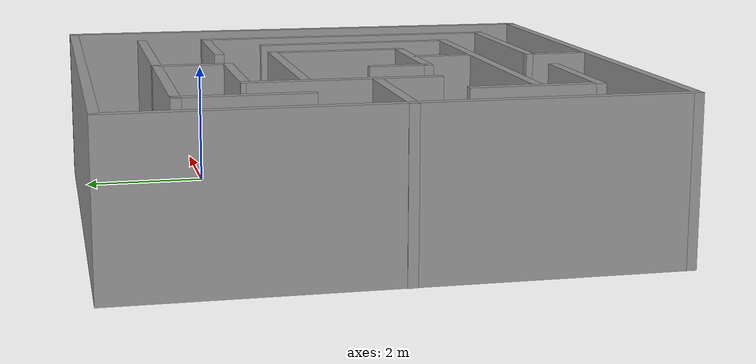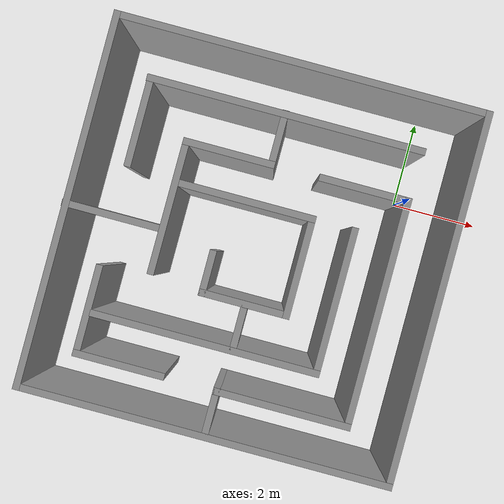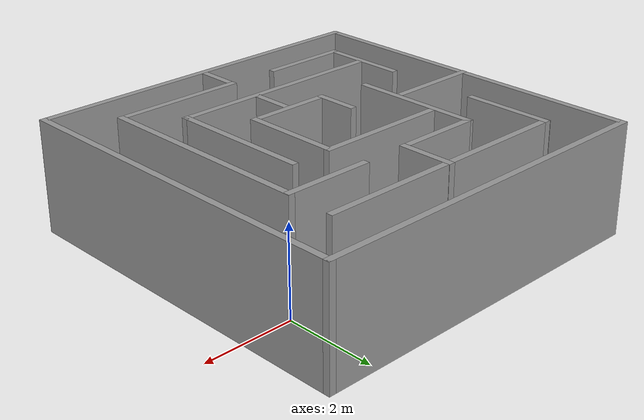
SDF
<?xml version='1.0'?>
<sdf version='1.7'>
  <model name='maze_8x8'>
    <pose>-2.97963 -1.94227 0 0 -0 0</pose>
    <link name='Wall_1'>
      <collision name='Wall_1_Collision'>
        <geometry>
          <box>
            <size>8.25 0.15 2.5</size>
          </box>
        </geometry>
        <pose>0 0 1.25 0 -0 0</pose>
      </collision>
      <visual name='Wall_1_Visual'>
        <pose>0 0 1.25 0 -0 0</pose>
        <geometry>
          <box>
            <size>8.25 0.15 2.5</size>
          </box>
        </geometry>
        <material>
          <script>
            <uri>file://media/materials/scripts/gazebo.material</uri>
            <name>Gazebo/Grey</name>
          </script>
          <ambient>1 1 1 1</ambient>
        </material>
        <meta>
          <layer>0</layer>
        </meta>
      </visual>
      <pose>-4.04416 -0 0 0 -0 1.5708</pose>
    </link>
    <link name='Wall_100'>
      <collision name='Wall_100_Collision'>
        <geometry>
          <box>
            <size>5 0.15 2.5</size>
          </box>
        </geometry>
        <pose>0 0 1.25 0 -0 0</pose>
      </collision>
      <visual name='Wall_100_Visual'>
        <pose>0 0 1.25 0 -0 0</pose>
        <geometry>
          <box>
            <size>5 0.15 2.5</size>
          </box>
        </geometry>
        <material>
          <script>
            <uri>file://media/materials/scripts/gazebo.material</uri>
            <name>Gazebo/Grey</name>
          </script>
          <ambient>1 1 1 1</ambient>
        </material>
        <meta>
          <layer>0</layer>
        </meta>
      </visual>
      <pose>-0.460696 -2.15237 0 0 -0 3.14159</pose>
    </link>
    <link name='Wall_102'>
      <collision name='Wall_102_Collision'>
        <geometry>
          <box>
            <size>1 0.15 2.5</size>
          </box>
        </geometry>
        <pose>0 0 1.25 0 -0 0</pose>
      </collision>
      <visual name='Wall_102_Visual'>
        <pose>0 0 1.25 0 -0 0</pose>
        <geometry>
          <box>
            <size>1 0.15 2.5</size>
          </box>
        </geometry>
        <material>
          <script>
            <uri>file://media/materials/scripts/gazebo.material</uri>
            <name>Gazebo/Grey</name>
          </script>
          <ambient>1 1 1 1</ambient>
        </material>
        <meta>
          <layer>0</layer>
        </meta>
      </visual>
      <pose>0.139254 -1.65222 0 0 -0 -1.5708</pose>
    </link>
    <link name='Wall_21'>
      <collision name='Wall_21_Collision'>
        <geometry>
          <box>
            <size>8.25 0.15 2.5</size>
          </box>
        </geometry>
        <pose>0 0 1.25 0 -0 0</pose>
      </collision>
      <visual name='Wall_21_Visual'>
        <pose>0 0 1.25 0 -0 0</pose>
        <geometry>
          <box>
            <size>8.25 0.15 2.5</size>
          </box>
        </geometry>
        <material>
          <script>
            <uri>file://media/materials/scripts/gazebo.material</uri>
            <name>Gazebo/Grey</name>
          </script>
          <ambient>1 1 1 1</ambient>
        </material>
        <meta>
          <layer>0</layer>
        </meta>
      </visual>
      <pose>0.005836 -4.05 0 0 -0 0</pose>
    </link>
    <link name='Wall_22'>
      <collision name='Wall_22_Collision'>
        <geometry>
          <box>
            <size>8.25 0.15 2.5</size>
          </box>
        </geometry>
        <pose>0 0 1.25 0 -0 0</pose>
      </collision>
      <visual name='Wall_22_Visual'>
        <pose>0 0 1.25 0 -0 0</pose>
        <geometry>
          <box>
            <size>8.25 0.15 2.5</size>
          </box>
        </geometry>
        <material>
          <script>
            <uri>file://media/materials/scripts/gazebo.material</uri>
            <name>Gazebo/Grey</name>
          </script>
          <ambient>1 1 1 1</ambient>
        </material>
        <meta>
          <layer>0</layer>
        </meta>
      </visual>
      <pose>4.05584 -0 0 0 -0 1.5708</pose>
    </link>
    <link name='Wall_23'>
      <collision name='Wall_23_Collision'>
        <geometry>
          <box>
            <size>8.25 0.15 2.5</size>
          </box>
        </geometry>
        <pose>0 0 1.25 0 -0 0</pose>
      </collision>
      <visual name='Wall_23_Visual'>
        <pose>0 0 1.25 0 -0 0</pose>
        <geometry>
          <box>
            <size>8.25 0.15 2.5</size>
          </box>
        </geometry>
        <material>
          <script>
            <uri>file://media/materials/scripts/gazebo.material</uri>
            <name>Gazebo/Grey</name>
          </script>
          <ambient>1 1 1 1</ambient>
        </material>
        <meta>
          <layer>0</layer>
        </meta>
      </visual>
      <pose>0.005836 4.05 0 0 -0 3.14159</pose>
    </link>
    <link name='Wall_31'>
      <collision name='Wall_31_Collision'>
        <geometry>
          <box>
            <size>6.0644 0.15 2.5</size>
          </box>
        </geometry>
        <pose>0 0 1.25 0 -0 0</pose>
      </collision>
      <visual name='Wall_31_Visual'>
        <pose>0 0 1.25 0 -0 0</pose>
        <geometry>
          <box>
            <size>6.0644 0.15 2.5</size>
          </box>
        </geometry>
        <material>
          <script>
            <uri>file://media/materials/scripts/gazebo.material</uri>
            <name>Gazebo/Grey</name>
          </script>
          <ambient>1 1 1 1</ambient>
        </material>
        <meta>
          <layer>0</layer>
        </meta>
      </visual>
      <pose>-0.060515 2.93404 0 0 -0 0</pose>
    </link>
    <link name='Wall_35'>
      <collision name='Wall_35_Collision'>
        <geometry>
          <box>
            <size>2 0.15 2.5</size>
          </box>
        </geometry>
        <pose>0 0 1.25 0 -0 0</pose>
      </collision>
      <visual name='Wall_35_Visual'>
        <pose>0 0 1.25 0 -0 0</pose>
        <geometry>
          <box>
            <size>2 0.15 2.5</size>
          </box>
        </geometry>
        <material>
          <script>
            <uri>file://media/materials/scripts/gazebo.material</uri>
            <name>Gazebo/Grey</name>
          </script>
          <ambient>1 1 1 1</ambient>
        </material>
        <meta>
          <layer>0</layer>
        </meta>
      </visual>
      <pose>-3.00449 2.00904 0 0 -0 -1.5708</pose>
    </link>
    <link name='Wall_39'>
      <collision name='Wall_39_Collision'>
        <geometry>
          <box>
            <size>2 0.15 2.5</size>
          </box>
        </geometry>
        <pose>0 0 1.25 0 -0 0</pose>
      </collision>
      <visual name='Wall_39_Visual'>
        <pose>0 0 1.25 0 -0 0</pose>
        <geometry>
          <box>
            <size>2 0.15 2.5</size>
          </box>
        </geometry>
        <material>
          <script>
            <uri>file://media/materials/scripts/gazebo.material</uri>
            <name>Gazebo/Grey</name>
          </script>
          <ambient>1 1 1 1</ambient>
        </material>
        <meta>
          <layer>0</layer>
        </meta>
      </visual>
      <pose>-1.01246 1.84213 0 0 -0 3.14159</pose>
    </link>
    <link name='Wall_40'>
      <collision name='Wall_40_Collision'>
        <geometry>
          <box>
            <size>2.97013 0.15 2.5</size>
          </box>
        </geometry>
        <pose>0 0 1.25 0 -0 0</pose>
      </collision>
      <visual name='Wall_40_Visual'>
        <pose>0 0 1.25 0 -0 0</pose>
        <geometry>
          <box>
            <size>2.97013 0.15 2.5</size>
          </box>
        </geometry>
        <material>
          <script>
            <uri>file://media/materials/scripts/gazebo.material</uri>
            <name>Gazebo/Grey</name>
          </script>
          <ambient>1 1 1 1</ambient>
        </material>
        <meta>
          <layer>0</layer>
        </meta>
      </visual>
      <pose>-1.94074 0.432067 0 0 -0 -1.57313</pose>
    </link>
    <link name='Wall_56'>
      <collision name='Wall_56_Collision'>
        <geometry>
          <box>
            <size>1.25 0.15 2.5</size>
          </box>
        </geometry>
        <pose>0 0 1.25 0 -0 0</pose>
      </collision>
      <visual name='Wall_56_Visual'>
        <pose>0 0 1.25 0 -0 0</pose>
        <geometry>
          <box>
            <size>1.25 0.15 2.5</size>
          </box>
        </geometry>
        <material>
          <script>
            <uri>file://media/materials/scripts/gazebo.material</uri>
            <name>Gazebo/Grey</name>
          </script>
          <ambient>1 1 1 1</ambient>
        </material>
        <meta>
          <layer>0</layer>
        </meta>
      </visual>
      <pose>-0.087455 2.39213 0 0 -0 1.5708</pose>
    </link>
    <link name='Wall_66'>
      <collision name='Wall_66_Collision'>
        <geometry>
          <box>
            <size>1 0.15 2.5</size>
          </box>
        </geometry>
        <pose>0 0 1.25 0 -0 0</pose>
      </collision>
      <visual name='Wall_66_Visual'>
        <pose>0 0 1.25 0 -0 0</pose>
        <geometry>
          <box>
            <size>1 0.15 2.5</size>
          </box>
        </geometry>
        <material>
          <script>
            <uri>file://media/materials/scripts/gazebo.material</uri>
            <name>Gazebo/Grey</name>
          </script>
          <ambient>1 1 1 1</ambient>
        </material>
        <meta>
          <layer>0</layer>
        </meta>
      </visual>
      <pose>0.036619 -3.48719 0 0 -0 -1.5708</pose>
    </link>
    <link name='Wall_72'>
      <collision name='Wall_72_Collision'>
        <geometry>
          <box>
            <size>3 0.15 2.5</size>
          </box>
        </geometry>
        <pose>0 0 1.25 0 -0 0</pose>
      </collision>
      <visual name='Wall_72_Visual'>
        <pose>0 0 1.25 0 -0 0</pose>
        <geometry>
          <box>
            <size>3 0.15 2.5</size>
          </box>
        </geometry>
        <material>
          <script>
            <uri>file://media/materials/scripts/gazebo.material</uri>
            <name>Gazebo/Grey</name>
          </script>
          <ambient>1 1 1 1</ambient>
        </material>
        <meta>
          <layer>0</layer>
        </meta>
      </visual>
      <pose>1.46162 -3.06219 0 0 -0 0</pose>
    </link>
    <link name='Wall_75'>
      <collision name='Wall_75_Collision'>
        <geometry>
          <box>
            <size>5.05772 0.15 2.5</size>
          </box>
        </geometry>
        <pose>0 0 1.25 0 -0 0</pose>
      </collision>
      <visual name='Wall_75_Visual'>
        <pose>0 0 1.25 0 -0 0</pose>
        <geometry>
          <box>
            <size>5.05772 0.15 2.5</size>
          </box>
        </geometry>
        <material>
          <script>
            <uri>file://media/materials/scripts/gazebo.material</uri>
            <name>Gazebo/Grey</name>
          </script>
          <ambient>1 1 1 1</ambient>
        </material>
        <meta>
          <layer>0</layer>
        </meta>
      </visual>
      <pose>2.88662 -0.608436 0 0 -0 1.5708</pose>
    </link>
    <link name='Wall_76'>
      <collision name='Wall_76_Collision'>
        <geometry>
          <box>
            <size>2 0.15 2.5</size>
          </box>
        </geometry>
        <pose>0 0 1.25 0 -0 0</pose>
      </collision>
      <visual name='Wall_76_Visual'>
        <pose>0 0 1.25 0 -0 0</pose>
        <geometry>
          <box>
            <size>2 0.15 2.5</size>
          </box>
        </geometry>
        <material>
          <script>
            <uri>file://media/materials/scripts/gazebo.material</uri>
            <name>Gazebo/Grey</name>
          </script>
          <ambient>1 1 1 1</ambient>
        </material>
        <meta>
          <layer>0</layer>
        </meta>
      </visual>
      <pose>1.95012 1.84531 0 0 -0 3.14159</pose>
    </link>
    <link name='Wall_82'>
      <collision name='Wall_82_Collision'>
        <geometry>
          <box>
            <size>2 0.15 2.5</size>
          </box>
        </geometry>
        <pose>0 0 1.25 0 -0 0</pose>
      </collision>
      <visual name='Wall_82_Visual'>
        <pose>0 0 1.25 0 -0 0</pose>
        <geometry>
          <box>
            <size>2 0.15 2.5</size>
          </box>
        </geometry>
        <material>
          <script>
            <uri>file://media/materials/scripts/gazebo.material</uri>
            <name>Gazebo/Grey</name>
          </script>
          <ambient>1 1 1 1</ambient>
        </material>
        <meta>
          <layer>0</layer>
        </meta>
      </visual>
      <pose>-2.0937 -3.05227 0 0 -0 3.14159</pose>
    </link>
    <link name='Wall_86'>
      <collision name='Wall_86_Collision'>
        <geometry>
          <box>
            <size>2 0.15 2.5</size>
          </box>
        </geometry>
        <pose>0 0 1.25 0 -0 0</pose>
      </collision>
      <visual name='Wall_86_Visual'>
        <pose>0 0 1.25 0 -0 0</pose>
        <geometry>
          <box>
            <size>2 0.15 2.5</size>
          </box>
        </geometry>
        <material>
          <script>
            <uri>file://media/materials/scripts/gazebo.material</uri>
            <name>Gazebo/Grey</name>
          </script>
          <ambient>1 1 1 1</ambient>
        </material>
        <meta>
          <layer>0</layer>
        </meta>
      </visual>
      <pose>-3.0187 -2.12727 0 0 -0 1.5708</pose>
    </link>
    <link name='Wall_89'>
      <collision name='Wall_89_Collision'>
        <geometry>
          <box>
            <size>2.25 0.15 2.5</size>
          </box>
        </geometry>
        <pose>0 0 1.25 0 -0 0</pose>
      </collision>
      <visual name='Wall_89_Visual'>
        <pose>0 0 1.25 0 -0 0</pose>
        <geometry>
          <box>
            <size>2.25 0.15 2.5</size>
          </box>
        </geometry>
        <material>
          <script>
            <uri>file://media/materials/scripts/gazebo.material</uri>
            <name>Gazebo/Grey</name>
          </script>
          <ambient>1 1 1 1</ambient>
        </material>
        <meta>
          <layer>0</layer>
        </meta>
      </visual>
      <pose>-3.00584 -0.064777 0 0 -0 3.14159</pose>
    </link>
    <link name='Wall_93'>
      <collision name='Wall_93_Collision'>
        <geometry>
          <box>
            <size>3.01767 0.15 2.5</size>
          </box>
        </geometry>
        <pose>0 0 1.25 0 -0 0</pose>
      </collision>
      <visual name='Wall_93_Visual'>
        <pose>0 0 1.25 0 -0 0</pose>
        <geometry>
          <box>
            <size>3.01767 0.15 2.5</size>
          </box>
        </geometry>
        <material>
          <script>
            <uri>file://media/materials/scripts/gazebo.material</uri>
            <name>Gazebo/Grey</name>
          </script>
          <ambient>1 1 1 1</ambient>
        </material>
        <meta>
          <layer>0</layer>
        </meta>
      </visual>
      <pose>-0.3913 0.962843 0 0 -0 0</pose>
    </link>
    <link name='Wall_94'>
      <collision name='Wall_94_Collision'>
        <geometry>
          <box>
            <size>2.25 0.15 2.5</size>
          </box>
        </geometry>
        <pose>0 0 1.25 0 -0 0</pose>
      </collision>
      <visual name='Wall_94_Visual'>
        <pose>0 0 1.25 0 -0 0</pose>
        <geometry>
          <box>
            <size>2.25 0.15 2.5</size>
          </box>
        </geometry>
        <material>
          <script>
            <uri>file://media/materials/scripts/gazebo.material</uri>
            <name>Gazebo/Grey</name>
          </script>
          <ambient>1 1 1 1</ambient>
        </material>
        <meta>
          <layer>0</layer>
        </meta>
      </visual>
      <pose>1.04253 -0.087158 0 0 -0 -1.5708</pose>
    </link>
    <link name='Wall_95'>
      <collision name='Wall_95_Collision'>
        <geometry>
          <box>
            <size>1.96958 0.15 2.5</size>
          </box>
        </geometry>
        <pose>0 0 1.25 0 -0 0</pose>
      </collision>
      <visual name='Wall_95_Visual'>
        <pose>0 0 1.25 0 -0 0</pose>
        <geometry>
          <box>
            <size>1.96958 0.15 2.5</size>
          </box>
        </geometry>
        <material>
          <script>
            <uri>file://media/materials/scripts/gazebo.material</uri>
            <name>Gazebo/Grey</name>
          </script>
          <ambient>1 1 1 1</ambient>
        </material>
        <meta>
          <layer>0</layer>
        </meta>
      </visual>
      <pose>0.117534 -1.13716 0 0 -0 3.14159</pose>
    </link>
    <link name='Wall_96'>
      <collision name='Wall_96_Collision'>
        <geometry>
          <box>
            <size>1 0.15 2.5</size>
          </box>
        </geometry>
        <pose>0 0 1.25 0 -0 0</pose>
      </collision>
      <visual name='Wall_96_Visual'>
        <pose>0 0 1.25 0 -0 0</pose>
        <geometry>
          <box>
            <size>1 0.15 2.5</size>
          </box>
        </geometry>
        <material>
          <script>
            <uri>file://media/materials/scripts/gazebo.material</uri>
            <name>Gazebo/Grey</name>
          </script>
          <ambient>1 1 1 1</ambient>
        </material>
        <meta>
          <layer>0</layer>
        </meta>
      </visual>
      <pose>-0.792257 -0.712158 0 0 -0 1.5708</pose>
    </link>
    <link name='Wall_98'>
      <collision name='Wall_98_Collision'>
        <geometry>
          <box>
            <size>3.25 0.15 2.5</size>
          </box>
        </geometry>
        <pose>0 0 1.25 0 -0 0</pose>
      </collision>
      <visual name='Wall_98_Visual'>
        <pose>0 0 1.25 0 -0 0</pose>
        <geometry>
          <box>
            <size>3.25 0.15 2.5</size>
          </box>
        </geometry>
        <material>
          <script>
            <uri>file://media/materials/scripts/gazebo.material</uri>
            <name>Gazebo/Grey</name>
          </script>
          <ambient>1 1 1 1</ambient>
        </material>
        <meta>
          <layer>0</layer>
        </meta>
      </visual>
      <pose>1.9643 -0.602366 0 0 -0 -1.5708</pose>
    </link>
    <static>1</static>
  </model>
</sdf>
